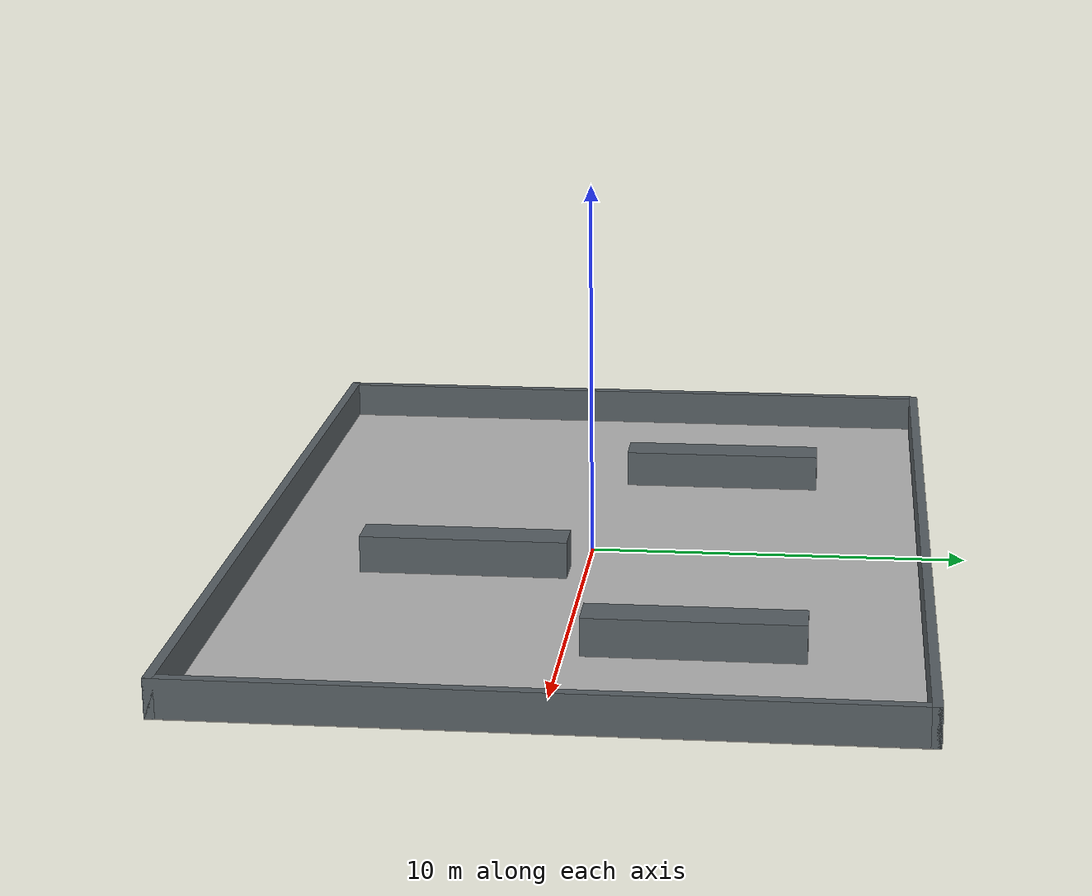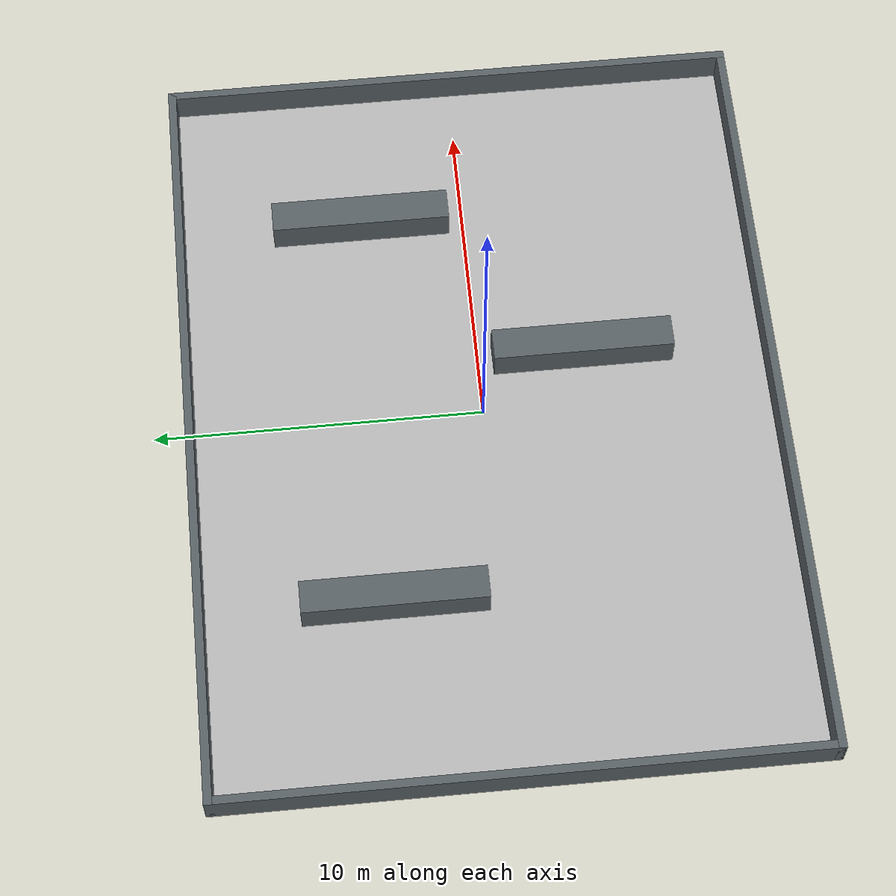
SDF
<?xml version="1.0"?>
<sdf version="1.6">
  <world name="default">
    <gravity>0 0 -9.8</gravity>
    <physics name="default_physics" type="ode">
      <max_step_size>0.002</max_step_size>
      <real_time_factor>1</real_time_factor>
      <real_time_update_rate>500</real_time_update_rate>
    </physics>
    <include><uri>model://sun</uri></include>
    <model name="ground_plane">
      <static>true</static>
      <link name="link">
        <collision name="collision">
          <geometry><box><size>24.000 18.000 0.02</size></box></geometry>
        </collision>
        <visual name="visual">
          <geometry><box><size>24.000 18.000 0.02</size></box></geometry>
          <material>
            <ambient>0.72 0.72 0.72 1</ambient>
            <diffuse>0.72 0.72 0.72 1</diffuse>
          </material>
        </visual>
      </link>
    </model>

    <model name="wall_north">
      <static>true</static>
      <pose>0.000 8.875 0.500 0 0 0</pose>
      <link name="link">
        <collision name="collision">
          <geometry><box><size>24.000 0.250 1.000</size></box></geometry>
        </collision>
        <visual name="visual">
          <geometry><box><size>24.000 0.250 1.000</size></box></geometry>
          <material>
            <ambient>0.35 0.38 0.40 1</ambient>
            <diffuse>0.35 0.38 0.40 1</diffuse>
          </material>
        </visual>
      </link>
    </model>

    <model name="wall_south">
      <static>true</static>
      <pose>0.000 -8.875 0.500 0 0 0</pose>
      <link name="link">
        <collision name="collision">
          <geometry><box><size>24.000 0.250 1.000</size></box></geometry>
        </collision>
        <visual name="visual">
          <geometry><box><size>24.000 0.250 1.000</size></box></geometry>
          <material>
            <ambient>0.35 0.38 0.40 1</ambient>
            <diffuse>0.35 0.38 0.40 1</diffuse>
          </material>
        </visual>
      </link>
    </model>

    <model name="wall_west">
      <static>true</static>
      <pose>-11.875 0.000 0.500 0 0 0</pose>
      <link name="link">
        <collision name="collision">
          <geometry><box><size>0.250 18.000 1.000</size></box></geometry>
        </collision>
        <visual name="visual">
          <geometry><box><size>0.250 18.000 1.000</size></box></geometry>
          <material>
            <ambient>0.35 0.38 0.40 1</ambient>
            <diffuse>0.35 0.38 0.40 1</diffuse>
          </material>
        </visual>
      </link>
    </model>

    <model name="wall_east">
      <static>true</static>
      <pose>11.875 0.000 0.500 0 0 0</pose>
      <link name="link">
        <collision name="collision">
          <geometry><box><size>0.250 18.000 1.000</size></box></geometry>
        </collision>
        <visual name="visual">
          <geometry><box><size>0.250 18.000 1.000</size></box></geometry>
          <material>
            <ambient>0.35 0.38 0.40 1</ambient>
            <diffuse>0.35 0.38 0.40 1</diffuse>
          </material>
        </visual>
      </link>
    </model>

    <model name="slalom_upper_left">
      <static>true</static>
      <pose>-6.000 3.200 0.500 0 0 0</pose>
      <link name="link">
        <collision name="collision">
          <geometry><box><size>1.000 5.500 1.000</size></box></geometry>
        </collision>
        <visual name="visual">
          <geometry><box><size>1.000 5.500 1.000</size></box></geometry>
          <material>
            <ambient>0.35 0.38 0.40 1</ambient>
            <diffuse>0.35 0.38 0.40 1</diffuse>
          </material>
        </visual>
      </link>
    </model>

    <model name="slalom_lower_middle">
      <static>true</static>
      <pose>1.800 -3.200 0.500 0 0 0</pose>
      <link name="link">
        <collision name="collision">
          <geometry><box><size>1.000 5.500 1.000</size></box></geometry>
        </collision>
        <visual name="visual">
          <geometry><box><size>1.000 5.500 1.000</size></box></geometry>
          <material>
            <ambient>0.35 0.38 0.40 1</ambient>
            <diffuse>0.35 0.38 0.40 1</diffuse>
          </material>
        </visual>
      </link>
    </model>

    <model name="slalom_upper_right">
      <static>true</static>
      <pose>7.000 3.200 0.500 0 0 0</pose>
      <link name="link">
        <collision name="collision">
          <geometry><box><size>1.000 5.500 1.000</size></box></geometry>
        </collision>
        <visual name="visual">
          <geometry><box><size>1.000 5.500 1.000</size></box></geometry>
          <material>
            <ambient>0.35 0.38 0.40 1</ambient>
            <diffuse>0.35 0.38 0.40 1</diffuse>
          </material>
        </visual>
      </link>
    </model>
  </world>
</sdf>
